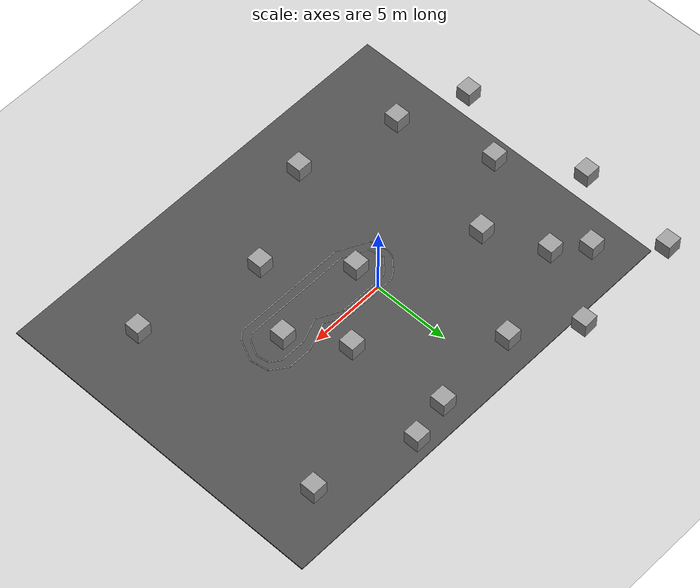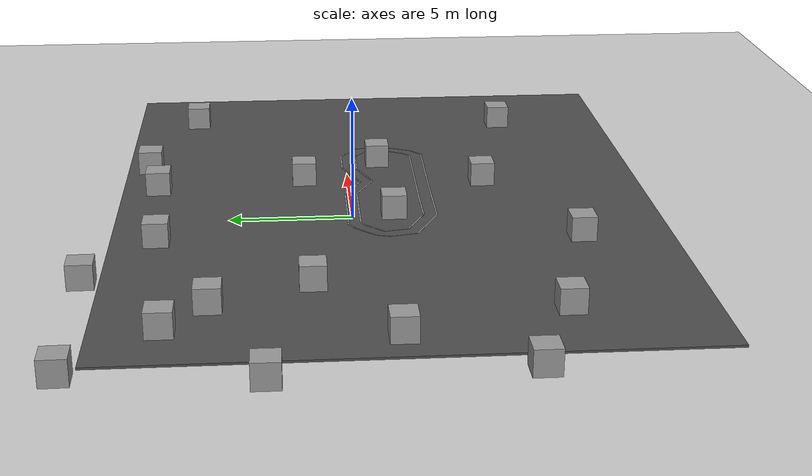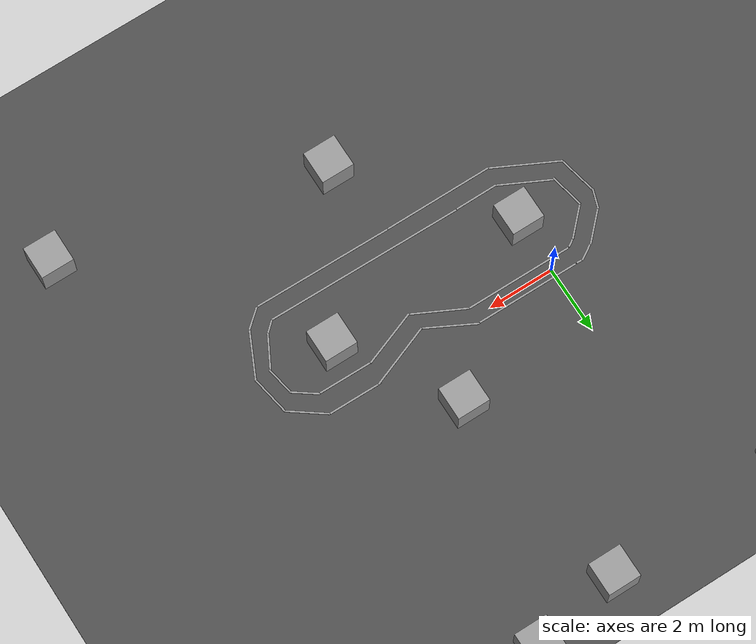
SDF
<sdf version="1.6">
 <world name="default">
  <light name="sun" type="directional">
   <pose>0 0 100 0 -0 0</pose>
   <diffuse>0.8 0.8 0.8 1</diffuse>
   <specular>0.1 0.1 0.1 1</specular>
   <attenuation>
    <range>1000</range>
    <constant>0.9</constant>
    <linear>0.01</linear>
    <quadratic>0.001</quadratic>
   </attenuation>
   <direction>-0.5 0.5 -1</direction>
  </light>
  <model name="ground_plane">
   <static>1</static>
   <link name="link">
    <collision name="collision">
     <geometry><plane><normal>0 0 1</normal><size>100 100</size></plane></geometry>
     <surface><friction><ode><mu>100</mu><mu2>50</mu2></ode></friction></surface>
    </collision>
    <visual name="visual">
     <cast_shadows>0</cast_shadows>
     <geometry><plane><normal>0 0 1</normal><size>100 100</size></plane></geometry>
     <material>
      <script><uri>file://media/materials/scripts/gazebo.material</uri><name>Gazebo/Grey</name></script>
     </material>
    </visual>
   </link>
  </model>
  <gravity>0 0 -9.8</gravity>
  <magnetic_field>6e-06 2.3e-05 -4.2e-05</magnetic_field>
  <atmosphere type="adiabatic"/>
  <physics name="default_physics" default="0" type="ode">
   <max_step_size>0.001</max_step_size>
   <real_time_factor>1</real_time_factor>
   <real_time_update_rate>1000</real_time_update_rate>
  </physics>
  <scene><ambient>0.4 0.4 0.4 1</ambient><background>0.7 0.7 0.7 1</background><shadows>1</shadows></scene>
  <spherical_coordinates>
   <surface_model>EARTH_WGS84</surface_model>
   <latitude_deg>0</latitude_deg>
   <longitude_deg>0</longitude_deg>
   <elevation>0</elevation>
   <heading_deg>0</heading_deg>
  </spherical_coordinates>
  <model name="asphalt_plane">
   <static>1</static>
   <link name="link">
    <collision name="collision"><geometry><box><size>28.54 22.04 0.1</size></box></geometry></collision>
    <visual name="visual">
     <cast_shadows>0</cast_shadows>
     <geometry><box><size>28.54 22.04 0.1</size></box></geometry>
     <material>
      <script>
       <uri>model://asphalt_plane/materials/scripts</uri>
       <uri>model://asphalt_plane/materials/textures</uri>
       <name>vrc/asphalt</name>
      </script>
     </material>
    </visual>
   </link>
   <pose>1.8219 -1.46041 0 0 -0 0</pose>
  </model>
  <audio><device>default</device></audio>
  <model name="unit_box">
   <pose>-9.27285 -7.14199 0.549997 -6e-06 -0 0.000183</pose>
   <link name="link">
    <inertial>
     <mass>1</mass>
     <inertia>
      <ixx>0.166667</ixx>
      <ixy>0</ixy>
      <ixz>0</ixz>
      <iyy>0.166667</iyy>
      <iyz>0</iyz>
      <izz>0.166667</izz>
     </inertia>
    </inertial>
    <collision name="collision"><geometry><box><size>1 1 1</size></box></geometry></collision>
    <visual name="visual">
     <geometry><box><size>1 1 1</size></box></geometry>
     <material>
      <script><name>Gazebo/Grey</name><uri>file://media/materials/scripts/gazebo.material</uri></script>
     </material>
    </visual>
   </link>
  </model>
  <model name="unit_box_clone">
   <pose>-2.81402 -8.82207 0.55 0 -0 0.000143</pose>
   <link name="link">
    <inertial>
     <mass>1</mass>
     <inertia>
      <ixx>0.166667</ixx>
      <ixy>0</ixy>
      <ixz>0</ixz>
      <iyy>0.166667</iyy>
      <iyz>0</iyz>
      <izz>0.166667</izz>
     </inertia>
    </inertial>
    <collision name="collision"><geometry><box><size>1 1 1</size></box></geometry></collision>
    <visual name="visual">
     <geometry><box><size>1 1 1</size></box></geometry>
     <material>
      <script><name>Gazebo/Grey</name><uri>file://media/materials/scripts/gazebo.material</uri></script>
     </material>
    </visual>
   </link>
  </model>
  <model name="unit_box_clone_0">
   <pose>3.59652 -5.71009 0.55 0 -0 0.000142</pose>
   <link name="link">
    <inertial>
     <mass>1</mass>
     <inertia>
      <ixx>0.166667</ixx>
      <ixy>0</ixy>
      <ixz>0</ixz>
      <iyy>0.166667</iyy>
      <iyz>0</iyz>
      <izz>0.166667</izz>
     </inertia>
    </inertial>
    <collision name="collision"><geometry><box><size>1 1 1</size></box></geometry></collision>
    <visual name="visual">
     <geometry><box><size>1 1 1</size></box></geometry>
     <material>
      <script><name>Gazebo/Grey</name><uri>file://media/materials/scripts/gazebo.material</uri></script>
     </material>
    </visual>
   </link>
  </model>
  <model name="unit_box_clone_1">
   <pose>11.4526 -7.49623 0.55 0 -0 0.000147</pose>
   <link name="link">
    <inertial>
     <mass>1</mass>
     <inertia>
      <ixx>0.166667</ixx>
      <ixy>0</ixy>
      <ixz>0</ixz>
      <iyy>0.166667</iyy>
      <iyz>0</iyz>
      <izz>0.166667</izz>
     </inertia>
    </inertial>
    <collision name="collision"><geometry><box><size>1 1 1</size></box></geometry></collision>
    <visual name="visual">
     <geometry><box><size>1 1 1</size></box></geometry>
     <material>
      <script><name>Gazebo/Grey</name><uri>file://media/materials/scripts/gazebo.material</uri></script>
     </material>
    </visual>
   </link>
  </model>
  <model name="unit_box_clone_2">
   <pose>6.23331 -1.37492 0.55 0 -0 0.000143</pose>
   <link name="link">
    <inertial>
     <mass>1</mass>
     <inertia>
      <ixx>0.166667</ixx>
      <ixy>0</ixy>
      <ixz>0</ixz>
      <iyy>0.166667</iyy>
      <iyz>0</iyz>
      <izz>0.166667</izz>
     </inertia>
    </inertial>
    <collision name="collision"><geometry><box><size>1 1 1</size></box></geometry></collision>
    <visual name="visual">
     <geometry><box><size>1 1 1</size></box></geometry>
     <material>
      <script><name>Gazebo/Grey</name><uri>file://media/materials/scripts/gazebo.material</uri></script>
     </material>
    </visual>
   </link>
  </model>
  <model name="unit_box_clone_3">
   <pose>12.2576 6.74361 0.55 0 -0 9.8e-05</pose>
   <link name="link">
    <inertial>
     <mass>1</mass>
     <inertia>
      <ixx>0.166667</ixx>
      <ixy>0</ixy>
      <ixz>0</ixz>
      <iyy>0.166667</iyy>
      <iyz>0</iyz>
      <izz>0.166667</izz>
     </inertia>
    </inertial>
    <collision name="collision"><geometry><box><size>1 1 1</size></box></geometry></collision>
    <visual name="visual">
     <geometry><box><size>1 1 1</size></box></geometry>
     <material>
      <script><name>Gazebo/Grey</name><uri>file://media/materials/scripts/gazebo.material</uri></script>
     </material>
    </visual>
   </link>
  </model>
  <model name="unit_box_clone_4">
   <pose>6.04481 8.55612 0.55 0 -0 0.000164</pose>
   <link name="link">
    <inertial>
     <mass>1</mass>
     <inertia>
      <ixx>0.166667</ixx>
      <ixy>0</ixy>
      <ixz>0</ixz>
      <iyy>0.166667</iyy>
      <iyz>0</iyz>
      <izz>0.166667</izz>
     </inertia>
    </inertial>
    <collision name="collision"><geometry><box><size>1 1 1</size></box></geometry></collision>
    <visual name="visual">
     <geometry><box><size>1 1 1</size></box></geometry>
     <material>
      <script><name>Gazebo/Grey</name><uri>file://media/materials/scripts/gazebo.material</uri></script>
     </material>
    </visual>
   </link>
  </model>
  <model name="unit_box_clone_6">
   <pose>0.026058 -1.65955 0.550002 -4e-06 -0 0.000203</pose>
   <link name="link">
    <inertial>
     <mass>1</mass>
     <inertia>
      <ixx>0.166667</ixx>
      <ixy>0</ixy>
      <ixz>0</ixz>
      <iyy>0.166667</iyy>
      <iyz>0</iyz>
      <izz>0.166667</izz>
     </inertia>
    </inertial>
    <collision name="collision"><geometry><box><size>1 1 1</size></box></geometry></collision>
    <visual name="visual">
     <geometry><box><size>1 1 1</size></box></geometry>
     <material>
      <script><name>Gazebo/Grey</name><uri>file://media/materials/scripts/gazebo.material</uri></script>
     </material>
    </visual>
   </link>
  </model>
  <model name="unit_box_clone_7">
   <pose>-6.71241 1.78806 0.55 0 -0 0.000166</pose>
   <link name="link">
    <inertial>
     <mass>1</mass>
     <inertia>
      <ixx>0.166667</ixx>
      <ixy>0</ixy>
      <ixz>0</ixz>
      <iyy>0.166667</iyy>
      <iyz>0</iyz>
      <izz>0.166667</izz>
     </inertia>
    </inertial>
    <collision name="collision"><geometry><box><size>1 1 1</size></box></geometry></collision>
    <visual name="visual">
     <geometry><box><size>1 1 1</size></box></geometry>
     <material>
      <script><name>Gazebo/Grey</name><uri>file://media/materials/scripts/gazebo.material</uri></script>
     </material>
    </visual>
   </link>
  </model>
  <model name="unit_box_clone_8">
   <pose>-8.37766 5.49634 0.55 0 -0 0.000165</pose>
   <link name="link">
    <inertial>
     <mass>1</mass>
     <inertia>
      <ixx>0.166667</ixx>
      <ixy>0</ixy>
      <ixz>0</ixz>
      <iyy>0.166667</iyy>
      <iyz>0</iyz>
      <izz>0.166667</izz>
     </inertia>
    </inertial>
    <collision name="collision"><geometry><box><size>1 1 1</size></box></geometry></collision>
    <visual name="visual">
     <geometry><box><size>1 1 1</size></box></geometry>
     <material>
      <script><name>Gazebo/Grey</name><uri>file://media/materials/scripts/gazebo.material</uri></script>
     </material>
    </visual>
   </link>
  </model>
  <model name="unit_box_clone_9">
   <pose>4.10325 1.88721 0.55 0 -0 0.00017</pose>
   <link name="link">
    <inertial>
     <mass>1</mass>
     <inertia>
      <ixx>0.166667</ixx>
      <ixy>0</ixy>
      <ixz>0</ixz>
      <iyy>0.166667</iyy>
      <iyz>0</iyz>
      <izz>0.166667</izz>
     </inertia>
    </inertial>
    <collision name="collision"><geometry><box><size>1 1 1</size></box></geometry></collision>
    <visual name="visual">
     <geometry><box><size>1 1 1</size></box></geometry>
     <material>
      <script><name>Gazebo/Grey</name><uri>file://media/materials/scripts/gazebo.material</uri></script>
     </material>
    </visual>
   </link>
  </model>
  <model name="unit_box_clone_10">
   <pose>3.37409 8.03639 0.55 0 -0 0.000164</pose>
   <link name="link">
    <inertial>
     <mass>1</mass>
     <inertia>
      <ixx>0.166667</ixx>
      <ixy>0</ixy>
      <ixz>0</ixz>
      <iyy>0.166667</iyy>
      <iyz>0</iyz>
      <izz>0.166667</izz>
     </inertia>
    </inertial>
    <collision name="collision"><geometry><box><size>1 1 1</size></box></geometry></collision>
    <visual name="visual">
     <geometry><box><size>1 1 1</size></box></geometry>
     <material>
      <script><name>Gazebo/Grey</name><uri>file://media/materials/scripts/gazebo.material</uri></script>
     </material>
    </visual>
   </link>
  </model>
  <model name="unit_box_clone_11">
   <pose>-2.28625 7.73138 0.55 0 -0 0.000163</pose>
   <link name="link">
    <inertial>
     <mass>1</mass>
     <inertia>
      <ixx>0.166667</ixx>
      <ixy>0</ixy>
      <ixz>0</ixz>
      <iyy>0.166667</iyy>
      <iyz>0</iyz>
      <izz>0.166667</izz>
     </inertia>
    </inertial>
    <collision name="collision"><geometry><box><size>1 1 1</size></box></geometry></collision>
    <visual name="visual">
     <geometry><box><size>1 1 1</size></box></geometry>
     <material>
      <script><name>Gazebo/Grey</name><uri>file://media/materials/scripts/gazebo.material</uri></script>
     </material>
    </visual>
   </link>
  </model>
  <model name="unit_box_clone_12">
   <pose>-5.90806 10.1704 0.5 0 -0 0.024822</pose>
   <link name="link">
    <inertial>
     <mass>1</mass>
     <inertia>
      <ixx>0.166667</ixx>
      <ixy>0</ixy>
      <ixz>0</ixz>
      <iyy>0.166667</iyy>
      <iyz>0</iyz>
      <izz>0.166667</izz>
     </inertia>
    </inertial>
    <collision name="collision"><geometry><box><size>1 1 1</size></box></geometry></collision>
    <visual name="visual">
     <geometry><box><size>1 1 1</size></box></geometry>
     <material>
      <script><name>Gazebo/Grey</name><uri>file://media/materials/scripts/gazebo.material</uri></script>
     </material>
    </visual>
   </link>
  </model>
  <model name="unit_box_clone_13">
   <pose>-10.1616 7.04332 0.55 0 -0 0.000162</pose>
   <link name="link">
    <inertial>
     <mass>1</mass>
     <inertia>
      <ixx>0.166667</ixx>
      <ixy>0</ixy>
      <ixz>0</ixz>
      <iyy>0.166667</iyy>
      <iyz>0</iyz>
      <izz>0.166667</izz>
     </inertia>
    </inertial>
    <collision name="collision"><geometry><box><size>1 1 1</size></box></geometry></collision>
    <visual name="visual">
     <geometry><box><size>1 1 1</size></box></geometry>
     <material>
      <script><name>Gazebo/Grey</name><uri>file://media/materials/scripts/gazebo.material</uri></script>
     </material>
    </visual>
   </link>
  </model>
  <model name="unit_box_clone_14">
   <pose>-13.8744 3.44637 0.5 0 0 -0.004174</pose>
   <link name="link">
    <inertial>
     <mass>1</mass>
     <inertia>
      <ixx>0.166667</ixx>
      <ixy>0</ixy>
      <ixz>0</ixz>
      <iyy>0.166667</iyy>
      <iyz>0</iyz>
      <izz>0.166667</izz>
     </inertia>
    </inertial>
    <collision name="collision"><geometry><box><size>1 1 1</size></box></geometry></collision>
    <visual name="visual">
     <geometry><box><size>1 1 1</size></box></geometry>
     <material>
      <script><name>Gazebo/Grey</name><uri>file://media/materials/scripts/gazebo.material</uri></script>
     </material>
    </visual>
   </link>
  </model>
  <model name="unit_box_clone_15">
   <pose>-13.1962 10.1008 0.5 0 -0 0.01982</pose>
   <link name="link">
    <inertial>
     <mass>1</mass>
     <inertia>
      <ixx>0.166667</ixx>
      <ixy>0</ixy>
      <ixz>0</ixz>
      <iyy>0.166667</iyy>
      <iyz>0</iyz>
      <izz>0.166667</izz>
     </inertia>
    </inertial>
    <collision name="collision"><geometry><box><size>1 1 1</size></box></geometry></collision>
    <visual name="visual">
     <geometry><box><size>1 1 1</size></box></geometry>
     <material>
      <script><name>Gazebo/Grey</name><uri>file://media/materials/scripts/gazebo.material</uri></script>
     </material>
    </visual>
   </link>
  </model>
  <model name="unit_box_clone_16">
   <pose>-11.0571 -1.13422 0.55 0 -0 0.000162</pose>
   <link name="link">
    <inertial>
     <mass>1</mass>
     <inertia>
      <ixx>0.166667</ixx>
      <ixy>0</ixy>
      <ixz>0</ixz>
      <iyy>0.166667</iyy>
      <iyz>0</iyz>
      <izz>0.166667</izz>
     </inertia>
    </inertial>
    <collision name="collision"><geometry><box><size>1 1 1</size></box></geometry></collision>
    <visual name="visual">
     <geometry><box><size>1 1 1</size></box></geometry>
     <material>
      <script><name>Gazebo/Grey</name><uri>file://media/materials/scripts/gazebo.material</uri></script>
     </material>
    </visual>
   </link>
  </model>
  <model name="unit_box_clone_17">
   <pose>-13.6257 -5.46546 0.5 0 -0 0</pose>
   <link name="link">
    <inertial>
     <mass>1</mass>
     <inertia>
      <ixx>0.166667</ixx>
      <ixy>0</ixy>
      <ixz>0</ixz>
      <iyy>0.166667</iyy>
      <iyz>0</iyz>
      <izz>0.166667</izz>
     </inertia>
    </inertial>
    <collision name="collision"><geometry><box><size>1 1 1</size></box></geometry></collision>
    <visual name="visual">
     <geometry><box><size>1 1 1</size></box></geometry>
     <material>
      <script><name>Gazebo/Grey</name><uri>file://media/materials/scripts/gazebo.material</uri></script>
     </material>
    </visual>
   </link>
  </model>
  <model name="unit_box_0">
   <pose>0.855115 -0.288245 0.05154 -9e-05 -0.002341 -0.002919</pose>
   <link name="link">
    <inertial>
     <mass>1</mass>
     <inertia>
      <ixx>0.166667</ixx>
      <ixy>0</ixy>
      <ixz>0</ixz>
      <iyy>0.166667</iyy>
      <iyz>0</iyz>
      <izz>0.166667</izz>
     </inertia>
    </inertial>
    <collision name="collision"><geometry><box><size>3.29447 0.057326 0.004435</size></box></geometry></collision>
    <visual name="visual">
     <geometry><box><size>3.29447 0.057326 0.004435</size></box></geometry>
     <material>
      <script><name>Gazebo/Grey</name><uri>file://media/materials/scripts/gazebo.material</uri></script>
     </material>
    </visual>
   </link>
  </model>
  <model name="unit_box_0_clone">
   <pose>0.884817 0.204636 0.051504 -4.4e-05 -0.002395 -0.002513</pose>
   <link name="link">
    <inertial>
     <mass>1</mass>
     <inertia>
      <ixx>0.166667</ixx>
      <ixy>0</ixy>
      <ixz>0</ixz>
      <iyy>0.166667</iyy>
      <iyz>0</iyz>
      <izz>0.166667</izz>
     </inertia>
    </inertial>
    <collision name="collision"><geometry><box><size>3.17943 0.057326 0.004435</size></box></geometry></collision>
    <visual name="visual">
     <geometry><box><size>3.17943 0.057326 0.004435</size></box></geometry>
     <material>
      <script><name>Gazebo/Grey</name><uri>file://media/materials/scripts/gazebo.material</uri></script>
     </material>
    </visual>
   </link>
  </model>
  <model name="unit_box_0_clone_clone">
   <pose>4.81692 -0.167651 0.056693 0.000146 -0.000136 0.36796</pose>
   <link name="link">
    <inertial>
     <mass>1</mass>
     <inertia>
      <ixx>0.166667</ixx>
      <ixy>0</ixy>
      <ixz>0</ixz>
      <iyy>0.166667</iyy>
      <iyz>0</iyz>
      <izz>0.166667</izz>
     </inertia>
    </inertial>
    <collision name="collision"><geometry><box><size>1.97964 0.057326 0.004435</size></box></geometry></collision>
    <visual name="visual">
     <geometry><box><size>1.97964 0.057326 0.004435</size></box></geometry>
     <material>
      <script><name>Gazebo/Grey</name><uri>file://media/materials/scripts/gazebo.material</uri></script>
     </material>
    </visual>
   </link>
  </model>
  <model name="unit_box_0_clone_clone_clone">
   <pose>4.7872 -0.74282 0.054487 0.001121 0.002631 0.360199</pose>
   <link name="link">
    <inertial>
     <mass>1</mass>
     <inertia>
      <ixx>0.166667</ixx>
      <ixy>0</ixy>
      <ixz>0</ixz>
      <iyy>0.166667</iyy>
      <iyz>0</iyz>
      <izz>0.166667</izz>
     </inertia>
    </inertial>
    <collision name="collision"><geometry><box><size>1.75867 0.057326 0.004435</size></box></geometry></collision>
    <visual name="visual">
     <geometry><box><size>1.75867 0.057326 0.004435</size></box></geometry>
     <material>
      <script><name>Gazebo/Grey</name><uri>file://media/materials/scripts/gazebo.material</uri></script>
     </material>
    </visual>
   </link>
  </model>
  <model name="unit_box_0_clone_clone_clone_0">
   <pose>6.4209 -0.454155 0.054048 7.8e-05 0.003154 -0.009311</pose>
   <link name="link">
    <inertial>
     <mass>1</mass>
     <inertia>
      <ixx>0.166667</ixx>
      <ixy>0</ixy>
      <ixz>0</ixz>
      <iyy>0.166667</iyy>
      <iyz>0</iyz>
      <izz>0.166667</izz>
     </inertia>
    </inertial>
    <collision name="collision"><geometry><box><size>1.63077 0.057326 0.004435</size></box></geometry></collision>
    <visual name="visual">
     <geometry><box><size>1.63077 0.057326 0.004435</size></box></geometry>
     <material>
      <script><name>Gazebo/Grey</name><uri>file://media/materials/scripts/gazebo.material</uri></script>
     </material>
    </visual>
   </link>
  </model>
  <model name="unit_box_0_clone_clone_clone_0_clone">
   <pose>6.47002 0.179274 0.054377 -1.6e-05 -0.002648 -0.005498</pose>
   <link name="link">
    <inertial>
     <mass>1</mass>
     <inertia>
      <ixx>0.166667</ixx>
      <ixy>0</ixy>
      <ixz>0</ixz>
      <iyy>0.166667</iyy>
      <iyz>0</iyz>
      <izz>0.166667</izz>
     </inertia>
    </inertial>
    <collision name="collision"><geometry><box><size>1.63077 0.057326 0.004435</size></box></geometry></collision>
    <visual name="visual">
     <geometry><box><size>1.63077 0.057326 0.004435</size></box></geometry>
     <material>
      <script><name>Gazebo/Grey</name><uri>file://media/materials/scripts/gazebo.material</uri></script>
     </material>
    </visual>
   </link>
  </model>
  <model name="unit_box_0_clone_clone_clone_0_clone_0">
   <pose>7.55455 -0.690291 0.054145 6e-06 0.004675 -0.626274</pose>
   <link name="link">
    <inertial>
     <mass>1</mass>
     <inertia>
      <ixx>0.166667</ixx>
      <ixy>0</ixy>
      <ixz>0</ixz>
      <iyy>0.166667</iyy>
      <iyz>0</iyz>
      <izz>0.166667</izz>
     </inertia>
    </inertial>
    <collision name="collision">
     <geometry><box><size>0.828487 0.057326 0.004435</size></box></geometry>
    </collision>
    <visual name="visual">
     <geometry><box><size>0.828487 0.057326 0.004435</size></box></geometry>
     <material>
      <script><name>Gazebo/Grey</name><uri>file://media/materials/scripts/gazebo.material</uri></script>
     </material>
    </visual>
   </link>
  </model>
  <model name="unit_box_0_clone_clone_clone_0_clone_0_clone">
   <pose>7.78187 -0.186328 0.052155 6e-06 -1.6e-05 -0.631083</pose>
   <link name="link">
    <inertial>
     <mass>1</mass>
     <inertia>
      <ixx>0.166667</ixx>
      <ixy>0</ixy>
      <ixz>0</ixz>
      <iyy>0.166667</iyy>
      <iyz>0</iyz>
      <izz>0.166667</izz>
     </inertia>
    </inertial>
    <collision name="collision"><geometry><box><size>1.229 0.057326 0.004435</size></box></geometry></collision>
    <visual name="visual">
     <geometry><box><size>1.229 0.057326 0.004435</size></box></geometry>
     <material>
      <script><name>Gazebo/Grey</name><uri>file://media/materials/scripts/gazebo.material</uri></script>
     </material>
    </visual>
   </link>
  </model>
  <model name="unit_box_0_clone_clone_clone_0_clone_0_clone_0">
   <pose>7.94332 -1.34084 0.056721 -0.003543 -3.2e-05 -1.39165</pose>
   <link name="link">
    <inertial>
     <mass>1</mass>
     <inertia>
      <ixx>0.166667</ixx>
      <ixy>0</ixy>
      <ixz>0</ixz>
      <iyy>0.166667</iyy>
      <iyz>0</iyz>
      <izz>0.166667</izz>
     </inertia>
    </inertial>
    <collision name="collision">
     <geometry><box><size>0.828487 0.057326 0.004435</size></box></geometry>
    </collision>
    <visual name="visual">
     <geometry><box><size>0.828487 0.057326 0.004435</size></box></geometry>
     <material>
      <script><name>Gazebo/Grey</name><uri>file://media/materials/scripts/gazebo.material</uri></script>
     </material>
    </visual>
   </link>
  </model>
  <model name="unit_box_0_clone_clone_clone_0_clone_0_clone_0_clone">
   <pose>8.3791 -1.11855 0.05666 -0.001542 -0.000152 -1.3954</pose>
   <link name="link">
    <inertial>
     <mass>1</mass>
     <inertia>
      <ixx>0.166667</ixx>
      <ixy>0</ixy>
      <ixz>0</ixz>
      <iyy>0.166667</iyy>
      <iyz>0</iyz>
      <izz>0.166667</izz>
     </inertia>
    </inertial>
    <collision name="collision"><geometry><box><size>1.16833 0.057326 0.004435</size></box></geometry></collision>
    <visual name="visual">
     <geometry><box><size>1.16833 0.057326 0.004435</size></box></geometry>
     <material>
      <script><name>Gazebo/Grey</name><uri>file://media/materials/scripts/gazebo.material</uri></script>
     </material>
    </visual>
   </link>
  </model>
  <model name="unit_box_0_clone_clone_clone_0_clone_0_clone_0_clone_0">
   <pose>7.75361 -2.19109 0.054621 -0.000975 -0.004466 -2.06184</pose>
   <link name="link">
    <inertial>
     <mass>1</mass>
     <inertia>
      <ixx>0.166667</ixx>
      <ixy>0</ixy>
      <ixz>0</ixz>
      <iyy>0.166667</iyy>
      <iyz>0</iyz>
      <izz>0.166667</izz>
     </inertia>
    </inertial>
    <collision name="collision"><geometry><box><size>1.0639 0.057326 0.004435</size></box></geometry></collision>
    <visual name="visual">
     <geometry><box><size>1.0639 0.057326 0.004435</size></box></geometry>
     <material>
      <script><name>Gazebo/Grey</name><uri>file://media/materials/scripts/gazebo.material</uri></script>
     </material>
    </visual>
   </link>
  </model>
  <model name="unit_box_0_clone_clone_clone_0_clone_0_clone_0_clone_0_clone">
   <pose>8.19051 -2.3365 0.05473 -1.7e-05 -0.003441 -2.01127</pose>
   <link name="link">
    <inertial>
     <mass>1</mass>
     <inertia>
      <ixx>0.166667</ixx>
      <ixy>0</ixy>
      <ixz>0</ixz>
      <iyy>0.166667</iyy>
      <iyz>0</iyz>
      <izz>0.166667</izz>
     </inertia>
    </inertial>
    <collision name="collision"><geometry><box><size>1.46012 0.057326 0.004435</size></box></geometry></collision>
    <visual name="visual">
     <geometry><box><size>1.46012 0.057326 0.004435</size></box></geometry>
     <material>
      <script><name>Gazebo/Grey</name><uri>file://media/materials/scripts/gazebo.material</uri></script>
     </material>
    </visual>
   </link>
  </model>
  <model name="unit_box_0_clone_0">
   <pose>5.24982 -3.4325 0.054102 -2e-05 0.003027 -0.011704</pose>
   <link name="link">
    <inertial>
     <mass>1</mass>
     <inertia>
      <ixx>0.166667</ixx>
      <ixy>0</ixy>
      <ixz>0</ixz>
      <iyy>0.166667</iyy>
      <iyz>0</iyz>
      <izz>0.166667</izz>
     </inertia>
    </inertial>
    <collision name="collision"><geometry><box><size>4.21298 0.057326 0.004435</size></box></geometry></collision>
    <visual name="visual">
     <geometry><box><size>4.21298 0.057326 0.004435</size></box></geometry>
     <material>
      <script><name>Gazebo/Grey</name><uri>file://media/materials/scripts/gazebo.material</uri></script>
     </material>
    </visual>
   </link>
  </model>
  <model name="unit_box_0_clone_0_clone">
   <pose>4.21863 -2.89343 0.052209 -8.4e-05 1.7e-05 -0.0101</pose>
   <link name="link">
    <inertial>
     <mass>1</mass>
     <inertia>
      <ixx>0.166667</ixx>
      <ixy>0</ixy>
      <ixz>0</ixz>
      <iyy>0.166667</iyy>
      <iyz>0</iyz>
      <izz>0.166667</izz>
     </inertia>
    </inertial>
    <collision name="collision"><geometry><box><size>6.04838 0.057326 0.004435</size></box></geometry></collision>
    <visual name="visual">
     <geometry><box><size>6.04838 0.057326 0.004435</size></box></geometry>
     <material>
      <script><name>Gazebo/Grey</name><uri>file://media/materials/scripts/gazebo.material</uri></script>
     </material>
    </visual>
   </link>
  </model>
  <model name="unit_box_0_clone_clone_clone_clone">
   <pose>3.24301 -0.673051 0.054363 -0.000192 0.002787 -0.46592</pose>
   <link name="link">
    <inertial>
     <mass>1</mass>
     <inertia>
      <ixx>0.166667</ixx>
      <ixy>0</ixy>
      <ixz>0</ixz>
      <iyy>0.166667</iyy>
      <iyz>0</iyz>
      <izz>0.166667</izz>
     </inertia>
    </inertial>
    <collision name="collision"><geometry><box><size>1.67966 0.057326 0.004435</size></box></geometry></collision>
    <visual name="visual">
     <geometry><box><size>1.67966 0.057326 0.004435</size></box></geometry>
     <material>
      <script><name>Gazebo/Grey</name><uri>file://media/materials/scripts/gazebo.material</uri></script>
     </material>
    </visual>
   </link>
  </model>
  <model name="unit_box_0_clone_clone_clone_clone_clone">
   <pose>3.21041 -0.157341 0.052169 2.8e-05 6.1e-05 -0.481689</pose>
   <link name="link">
    <inertial>
     <mass>1</mass>
     <inertia>
      <ixx>0.166667</ixx>
      <ixy>0</ixy>
      <ixz>0</ixz>
      <iyy>0.166667</iyy>
      <iyz>0</iyz>
      <izz>0.166667</izz>
     </inertia>
    </inertial>
    <collision name="collision"><geometry><box><size>1.63079 0.057326 0.004435</size></box></geometry></collision>
    <visual name="visual">
     <geometry><box><size>1.63079 0.057326 0.004435</size></box></geometry>
     <material>
      <script><name>Gazebo/Grey</name><uri>file://media/materials/scripts/gazebo.material</uri></script>
     </material>
    </visual>
   </link>
  </model>
  <model name="unit_box_0_clone_clone_clone_0_clone_0_clone_0_clone_0_clone_clone">
   <pose>7.62005 -3.23281 0.052221 0.000112 -0 -2.42866</pose>
   <link name="link">
    <inertial>
     <mass>1</mass>
     <inertia>
      <ixx>0.166667</ixx>
      <ixy>0</ixy>
      <ixz>0</ixz>
      <iyy>0.166667</iyy>
      <iyz>0</iyz>
      <izz>0.166667</izz>
     </inertia>
    </inertial>
    <collision name="collision">
     <geometry><box><size>0.690254 0.057326 0.004435</size></box></geometry>
    </collision>
    <visual name="visual">
     <geometry><box><size>0.690254 0.057326 0.004435</size></box></geometry>
     <material>
      <script><name>Gazebo/Grey</name><uri>file://media/materials/scripts/gazebo.material</uri></script>
     </material>
    </visual>
   </link>
  </model>
  <model name="unit_box_0_clone_clone_clone_0_clone_0_clone_0_clone_0_clone_clone_clone">
   <pose>7.36348 -2.78089 0.054623 -5e-06 -0.011633 -2.39677</pose>
   <link name="link">
    <inertial>
     <mass>1</mass>
     <inertia>
      <ixx>0.166667</ixx>
      <ixy>0</ixy>
      <ixz>0</ixz>
      <iyy>0.166667</iyy>
      <iyz>0</iyz>
      <izz>0.166667</izz>
     </inertia>
    </inertial>
    <collision name="collision">
     <geometry><box><size>0.420354 0.057326 0.004435</size></box></geometry>
    </collision>
    <visual name="visual">
     <geometry><box><size>0.420354 0.057326 0.004435</size></box></geometry>
     <material>
      <script><name>Gazebo/Grey</name><uri>file://media/materials/scripts/gazebo.material</uri></script>
     </material>
    </visual>
   </link>
  </model>
  <model name="unit_box_0_clone_0_clone_clone">
   <pose>1.51943 -3.41224 0.054453 0.001217 0.001311 -0.000487</pose>
   <link name="link">
    <inertial>
     <mass>1</mass>
     <inertia>
      <ixx>0.166667</ixx>
      <ixy>0</ixy>
      <ixz>0</ixz>
      <iyy>0.166667</iyy>
      <iyz>0</iyz>
      <izz>0.166667</izz>
     </inertia>
    </inertial>
    <collision name="collision"><geometry><box><size>3.35765 0.057326 0.004435</size></box></geometry></collision>
    <visual name="visual">
     <geometry><box><size>3.35765 0.057326 0.004435</size></box></geometry>
     <material>
      <script><name>Gazebo/Grey</name><uri>file://media/materials/scripts/gazebo.material</uri></script>
     </material>
    </visual>
   </link>
  </model>
  <model name="unit_box_0_clone_clone_clone_clone_clone_0">
   <pose>-1.08739 -2.9394 0.054217 4.3e-05 0.001919 -0.466248</pose>
   <link name="link">
    <inertial>
     <mass>1</mass>
     <inertia>
      <ixx>0.166667</ixx>
      <ixy>0</ixy>
      <ixz>0</ixz>
      <iyy>0.166667</iyy>
      <iyz>0</iyz>
      <izz>0.166667</izz>
     </inertia>
    </inertial>
    <collision name="collision"><geometry><box><size>2.08091 0.057326 0.004435</size></box></geometry></collision>
    <visual name="visual">
     <geometry><box><size>2.08091 0.057326 0.004435</size></box></geometry>
     <material>
      <script><name>Gazebo/Grey</name><uri>file://media/materials/scripts/gazebo.material</uri></script>
     </material>
    </visual>
   </link>
  </model>
  <model name="unit_box_0_clone_clone_clone_clone_clone_0_clone">
   <pose>-0.794732 -2.50532 0.05219 0 -3.3e-05 -0.464991</pose>
   <link name="link">
    <inertial>
     <mass>1</mass>
     <inertia>
      <ixx>0.166667</ixx>
      <ixy>0</ixy>
      <ixz>0</ixz>
      <iyy>0.166667</iyy>
      <iyz>0</iyz>
      <izz>0.166667</izz>
     </inertia>
    </inertial>
    <collision name="collision"><geometry><box><size>1.64873 0.057326 0.004435</size></box></geometry></collision>
    <visual name="visual">
     <geometry><box><size>1.64873 0.057326 0.004435</size></box></geometry>
     <material>
      <script><name>Gazebo/Grey</name><uri>file://media/materials/scripts/gazebo.material</uri></script>
     </material>
    </visual>
   </link>
  </model>
  <model name="unit_box_0_clone_clone_clone_clone_clone_0_clone_clone">
   <pose>0.58549 -2.87478 0.056563 0.000185 9.7e-05 0.005174</pose>
   <link name="link">
    <inertial>
     <mass>1</mass>
     <inertia>
      <ixx>0.166667</ixx>
      <ixy>0</ixy>
      <ixz>0</ixz>
      <iyy>0.166667</iyy>
      <iyz>0</iyz>
      <izz>0.166667</izz>
     </inertia>
    </inertial>
    <collision name="collision"><geometry><box><size>1.30903 0.057326 0.004435</size></box></geometry></collision>
    <visual name="visual">
     <geometry><box><size>1.30903 0.057326 0.004435</size></box></geometry>
     <material>
      <script><name>Gazebo/Grey</name><uri>file://media/materials/scripts/gazebo.material</uri></script>
     </material>
    </visual>
   </link>
  </model>
  <model name="unit_box_0_clone_clone_clone_clone_clone_0_clone_clone_0">
   <pose>-1.62079 -1.67618 0.056609 0.000162 0.000131 -1.37398</pose>
   <link name="link">
    <inertial>
     <mass>1</mass>
     <inertia>
      <ixx>0.166667</ixx>
      <ixy>0</ixy>
      <ixz>0</ixz>
      <iyy>0.166667</iyy>
      <iyz>0</iyz>
      <izz>0.166667</izz>
     </inertia>
    </inertial>
    <collision name="collision"><geometry><box><size>1.06986 0.057326 0.004435</size></box></geometry></collision>
    <visual name="visual">
     <geometry><box><size>1.06986 0.057326 0.004435</size></box></geometry>
     <material>
      <script><name>Gazebo/Grey</name><uri>file://media/materials/scripts/gazebo.material</uri></script>
     </material>
    </visual>
   </link>
  </model>
  <model name="unit_box_0_clone_clone_clone_clone_clone_0_clone_clone_0_clone">
   <pose>-2.12361 -1.8983 0.051999 -2e-05 0.000396 -1.36357</pose>
   <link name="link">
    <inertial>
     <mass>1</mass>
     <inertia>
      <ixx>0.166667</ixx>
      <ixy>0</ixy>
      <ixz>0</ixz>
      <iyy>0.166667</iyy>
      <iyz>0</iyz>
      <izz>0.166667</izz>
     </inertia>
    </inertial>
    <collision name="collision"><geometry><box><size>1.19505 0.057326 0.004435</size></box></geometry></collision>
    <visual name="visual">
     <geometry><box><size>1.19505 0.057326 0.004435</size></box></geometry>
     <material>
      <script><name>Gazebo/Grey</name><uri>file://media/materials/scripts/gazebo.material</uri></script>
     </material>
    </visual>
   </link>
  </model>
  <model name="unit_box_0_clone_clone_clone_clone_clone_0_clone_clone_0_clone_clone">
   <pose>-1.35667 -0.803476 0.052193 -2.6e-05 -4.1e-05 -2.34417</pose>
   <link name="link">
    <inertial>
     <mass>1</mass>
     <inertia>
      <ixx>0.166667</ixx>
      <ixy>0</ixy>
      <ixz>0</ixz>
      <iyy>0.166667</iyy>
      <iyz>0</iyz>
      <izz>0.166667</izz>
     </inertia>
    </inertial>
    <collision name="collision"><geometry><box><size>1.06641 0.057326 0.004435</size></box></geometry></collision>
    <visual name="visual">
     <geometry><box><size>1.06641 0.057326 0.004435</size></box></geometry>
     <material>
      <script><name>Gazebo/Grey</name><uri>file://media/materials/scripts/gazebo.material</uri></script>
     </material>
    </visual>
   </link>
  </model>
  <model name="unit_box_0_clone_clone_clone_clone_clone_0_clone_clone_0_clone_clone_clone">
   <pose>-1.68382 -0.413062 0.053468 0.000394 0.006202 -2.34405</pose>
   <link name="link">
    <inertial>
     <mass>1</mass>
     <inertia>
      <ixx>0.166667</ixx>
      <ixy>0</ixy>
      <ixz>0</ixz>
      <iyy>0.166667</iyy>
      <iyz>0</iyz>
      <izz>0.166667</izz>
     </inertia>
    </inertial>
    <collision name="collision"><geometry><box><size>1.06641 0.057326 0.004435</size></box></geometry></collision>
    <visual name="visual">
     <geometry><box><size>1.06641 0.057326 0.004435</size></box></geometry>
     <material>
      <script><name>Gazebo/Grey</name><uri>file://media/materials/scripts/gazebo.material</uri></script>
     </material>
    </visual>
   </link>
  </model>
  <model name="unit_box_0_clone_clone_clone_clone_clone_0_clone_clone_0_clone_clone_clone_clone">
   <pose>-2.16233 -1.06677 0.057039 0.001444 -0.001182 -1.89404</pose>
   <link name="link">
    <inertial>
     <mass>1</mass>
     <inertia>
      <ixx>0.166667</ixx>
      <ixy>0</ixy>
      <ixz>0</ixz>
      <iyy>0.166667</iyy>
      <iyz>0</iyz>
      <izz>0.166667</izz>
     </inertia>
    </inertial>
    <collision name="collision"><geometry><box><size>0.60988 0.057326 0.004435</size></box></geometry></collision>
    <visual name="visual">
     <geometry><box><size>0.60988 0.057326 0.004435</size></box></geometry>
     <material>
      <script><name>Gazebo/Grey</name><uri>file://media/materials/scripts/gazebo.material</uri></script>
     </material>
    </visual>
   </link>
  </model>
  <model name="unit_box_0_clone_clone_clone_clone_clone_0_clone_clone_0_clone_clone_clone_clone_clone">
   <pose>-1.09076 0.08954 0.052195 -1.2e-05 7e-06 -2.58165</pose>
   <link name="link">
    <inertial>
     <mass>1</mass>
     <inertia>
      <ixx>0.166667</ixx>
      <ixy>0</ixy>
      <ixz>0</ixz>
      <iyy>0.166667</iyy>
      <iyz>0</iyz>
      <izz>0.166667</izz>
     </inertia>
    </inertial>
    <collision name="collision">
     <geometry><box><size>0.535693 0.057326 0.004435</size></box></geometry>
    </collision>
    <visual name="visual">
     <geometry><box><size>0.535693 0.057326 0.004435</size></box></geometry>
     <material>
      <script><name>Gazebo/Grey</name><uri>file://media/materials/scripts/gazebo.material</uri></script>
     </material>
    </visual>
   </link>
  </model>
  <model name="unit_box_0_clone_clone_clone_clone_clone_0_clone_clone_0_clone_clone_clone_clone_clone_clone">
   <pose>-0.876676 -0.358703 0.054434 9.3e-05 -0.018326 -2.56356</pose>
   <link name="link">
    <inertial>
     <mass>1</mass>
     <inertia>
      <ixx>0.166667</ixx>
      <ixy>0</ixy>
      <ixz>0</ixz>
      <iyy>0.166667</iyy>
      <iyz>0</iyz>
      <izz>0.166667</izz>
     </inertia>
    </inertial>
    <collision name="collision">
     <geometry><box><size>0.243741 0.057326 0.004435</size></box></geometry>
    </collision>
    <visual name="visual">
     <geometry><box><size>0.243741 0.057326 0.004435</size></box></geometry>
     <material>
      <script><name>Gazebo/Grey</name><uri>file://media/materials/scripts/gazebo.material</uri></script>
     </material>
    </visual>
   </link>
  </model>
  <model name="unit_box_0_clone_clone_clone_clone_clone_0_clone_clone_0_clone_clone_clone_clone_clone_clone_clone">
   <pose>-0.77985 0.211414 0.054656 0.000365 -0.028896 3.1134</pose>
   <link name="link">
    <inertial>
     <mass>1</mass>
     <inertia>
      <ixx>0.166667</ixx>
      <ixy>0</ixy>
      <ixz>0</ixz>
      <iyy>0.166667</iyy>
      <iyz>0</iyz>
      <izz>0.166667</izz>
     </inertia>
    </inertial>
    <collision name="collision">
     <geometry><box><size>0.168147 0.057326 0.004435</size></box></geometry>
    </collision>
    <visual name="visual">
     <geometry><box><size>0.168147 0.057326 0.004435</size></box></geometry>
     <material>
      <script><name>Gazebo/Grey</name><uri>file://media/materials/scripts/gazebo.material</uri></script>
     </material>
    </visual>
   </link>
  </model>
 </world>
</sdf>
